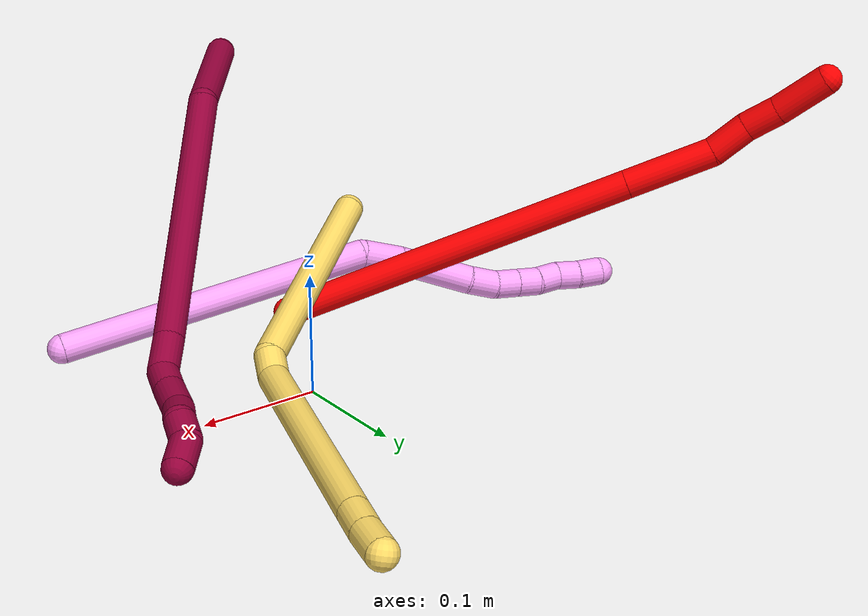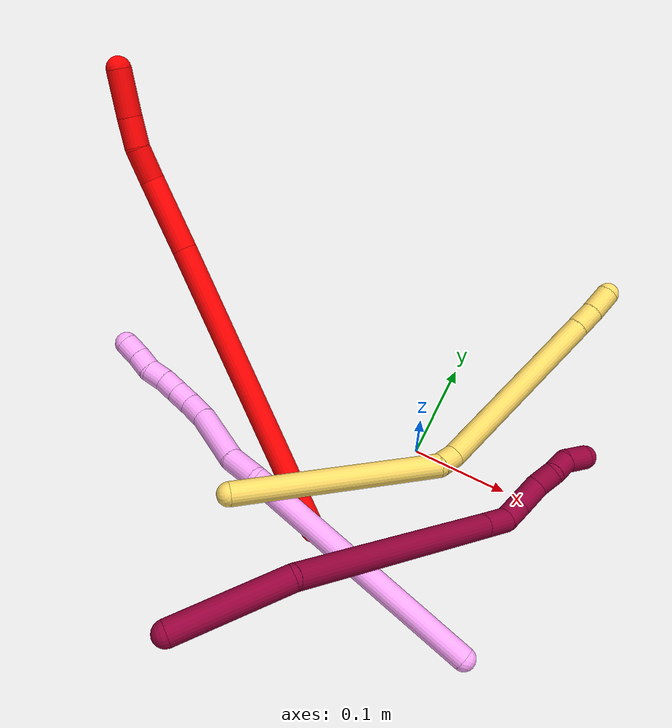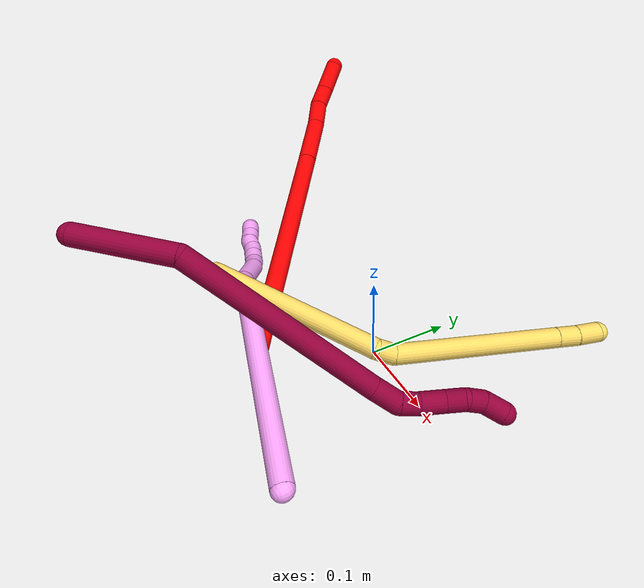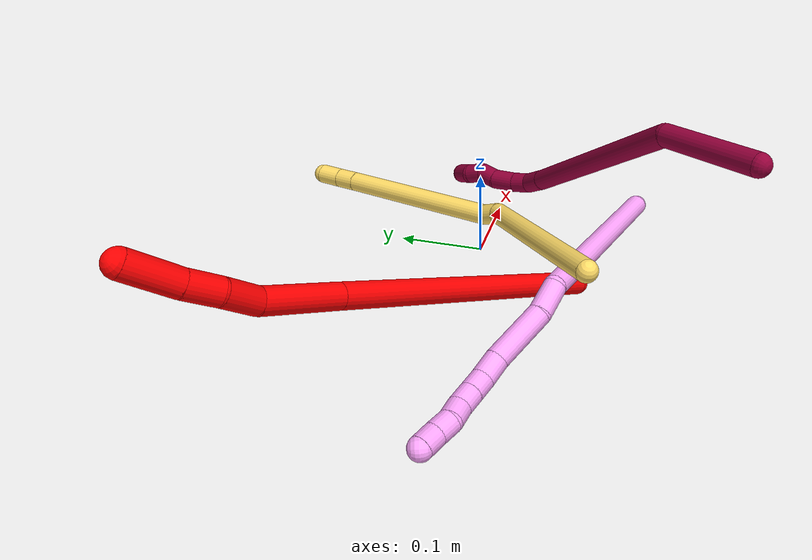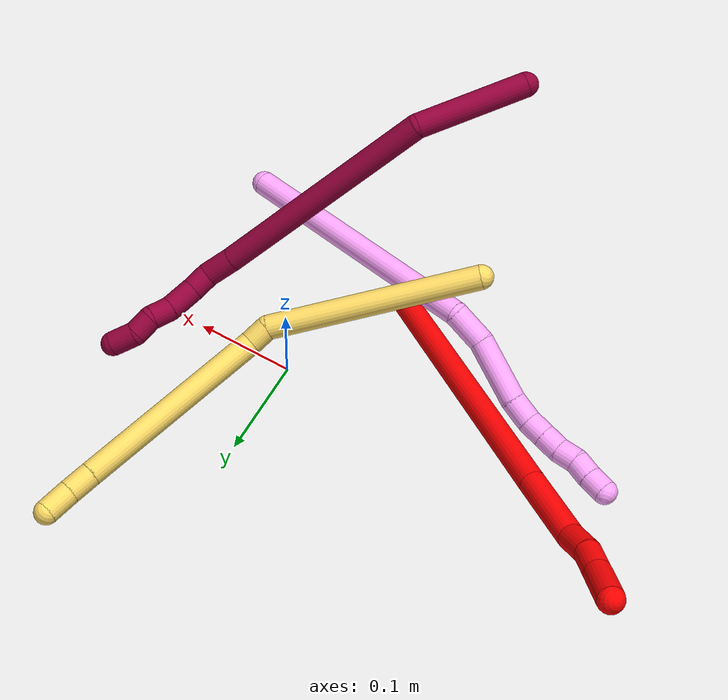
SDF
<sdf version="1.7">
 <world name="default">
  <model name="2">
   <static>0</static>
   <link name="2">
    <collision name="collision-cylinder-e_1_1_4">
     <pose>-0.061533 0.044089 0.136308 -0.31283 -0.405687 0.064848</pose>
     <geometry><cylinder><radius>0.0125</radius><length>0.311833</length></cylinder></geometry>
     <surface>
      <friction><ode><mu>1.16</mu><mu2>1.16</mu2><slip1>0</slip1><slip2>0</slip2></ode></friction>
      <contact><ode><kp>1e+06</kp><kd>1</kd><max_vel>0</max_vel><min_depth>0.001</min_depth></ode></contact>
     </surface>
    </collision>
    <visual name="visual-cylinder-e_1_1_4">
     <pose>-0.061533 0.044089 0.136308 -0.31283 -0.405687 0.064848</pose>
     <geometry><cylinder><radius>0.0125</radius><length>0.311833</length></cylinder></geometry>
     <material><ambient>1 0 0 1</ambient></material>
    </visual>
    <collision name="collision-cylinder-e_2_4_5">
     <pose>-0.138345 0.098726 0.306045 -0.305652 -0.41107 0.064201</pose>
     <geometry><cylinder><radius>0.0125</radius><length>0.076478</length></cylinder></geometry>
     <surface>
      <friction><ode><mu>1.16</mu><mu2>1.16</mu2><slip1>0</slip1><slip2>0</slip2></ode></friction>
      <contact><ode><kp>1e+06</kp><kd>1</kd><max_vel>0</max_vel><min_depth>0.001</min_depth></ode></contact>
     </surface>
    </collision>
    <visual name="visual-cylinder-e_2_4_5">
     <pose>-0.138345 0.098726 0.306045 -0.305652 -0.41107 0.064201</pose>
     <geometry><cylinder><radius>0.0125</radius><length>0.076478</length></cylinder></geometry>
     <material><ambient>1 0 0 1</ambient></material>
    </visual>
    <collision name="collision-cylinder-e_3_5_6">
     <pose>-0.15592 0.1124 0.356253 -0.184197 -0.133643 0.012361</pose>
     <geometry><cylinder><radius>0.0125</radius><length>0.034445</length></cylinder></geometry>
     <surface>
      <friction><ode><mu>1.16</mu><mu2>1.16</mu2><slip1>0</slip1><slip2>0</slip2></ode></friction>
      <contact><ode><kp>1e+06</kp><kd>1</kd><max_vel>0</max_vel><min_depth>0.001</min_depth></ode></contact>
     </surface>
    </collision>
    <visual name="visual-cylinder-e_3_5_6">
     <pose>-0.15592 0.1124 0.356253 -0.184197 -0.133643 0.012361</pose>
     <geometry><cylinder><radius>0.0125</radius><length>0.034445</length></cylinder></geometry>
     <material><ambient>1 0 0 1</ambient></material>
    </visual>
    <collision name="collision-cylinder-e_4_6_7">
     <pose>-0.160674 0.121331 0.386768 -0.399837 -0.163487 0.033197</pose>
     <geometry><cylinder><radius>0.0125</radius><length>0.030224</length></cylinder></geometry>
     <surface>
      <friction><ode><mu>1.16</mu><mu2>1.16</mu2><slip1>0</slip1><slip2>0</slip2></ode></friction>
      <contact><ode><kp>1e+06</kp><kd>1</kd><max_vel>0</max_vel><min_depth>0.001</min_depth></ode></contact>
     </surface>
    </collision>
    <visual name="visual-cylinder-e_4_6_7">
     <pose>-0.160674 0.121331 0.386768 -0.399837 -0.163487 0.033197</pose>
     <geometry><cylinder><radius>0.0125</radius><length>0.030224</length></cylinder></geometry>
     <material><ambient>1 0 0 1</ambient></material>
    </visual>
    <collision name="collision-cylinder-e_5_7_2">
     <pose>-0.164607 0.135886 0.422274 -0.382186 -0.062694 0.012132</pose>
     <geometry><cylinder><radius>0.0125</radius><length>0.04702</length></cylinder></geometry>
     <surface>
      <friction><ode><mu>1.16</mu><mu2>1.16</mu2><slip1>0</slip1><slip2>0</slip2></ode></friction>
      <contact><ode><kp>1e+06</kp><kd>1</kd><max_vel>0</max_vel><min_depth>0.001</min_depth></ode></contact>
     </surface>
    </collision>
    <visual name="visual-cylinder-e_5_7_2">
     <pose>-0.164607 0.135886 0.422274 -0.382186 -0.062694 0.012132</pose>
     <geometry><cylinder><radius>0.0125</radius><length>0.04702</length></cylinder></geometry>
     <material><ambient>1 0 0 1</ambient></material>
    </visual>
    <collision name="collision-sphere-2">
     <pose>-0.16608 0.144637 0.444045 0 -0 0</pose>
     <geometry><sphere><radius>0.0125</radius></sphere></geometry>
     <surface>
      <friction><ode><mu>1.16</mu><mu2>1.16</mu2><slip1>0</slip1><slip2>0</slip2></ode></friction>
      <contact><ode><kp>1e+06</kp><kd>1</kd><max_vel>0</max_vel><min_depth>0.001</min_depth></ode></contact>
     </surface>
    </collision>
    <visual name="visual-sphere-2">
     <pose>-0.16608 0.144637 0.444045 0 -0 0</pose>
     <geometry><sphere><radius>0.0125</radius></sphere></geometry>
     <material><ambient>1 0 0 1</ambient></material>
    </visual>
    <collision name="collision-sphere-7">
     <pose>-0.163134 0.127135 0.400503 0 -0 0</pose>
     <geometry><sphere><radius>0.0125</radius></sphere></geometry>
     <surface>
      <friction><ode><mu>1.16</mu><mu2>1.16</mu2><slip1>0</slip1><slip2>0</slip2></ode></friction>
      <contact><ode><kp>1e+06</kp><kd>1</kd><max_vel>0</max_vel><min_depth>0.001</min_depth></ode></contact>
     </surface>
    </collision>
    <visual name="visual-sphere-7">
     <pose>-0.163134 0.127135 0.400503 0 -0 0</pose>
     <geometry><sphere><radius>0.0125</radius></sphere></geometry>
     <material><ambient>1 0 0 1</ambient></material>
    </visual>
    <collision name="collision-sphere-6">
     <pose>-0.158214 0.115527 0.373033 0 -0 0</pose>
     <geometry><sphere><radius>0.0125</radius></sphere></geometry>
     <surface>
      <friction><ode><mu>1.16</mu><mu2>1.16</mu2><slip1>0</slip1><slip2>0</slip2></ode></friction>
      <contact><ode><kp>1e+06</kp><kd>1</kd><max_vel>0</max_vel><min_depth>0.001</min_depth></ode></contact>
     </surface>
    </collision>
    <visual name="visual-sphere-6">
     <pose>-0.158214 0.115527 0.373033 0 -0 0</pose>
     <geometry><sphere><radius>0.0125</radius></sphere></geometry>
     <material><ambient>1 0 0 1</ambient></material>
    </visual>
    <collision name="collision-sphere-5">
     <pose>-0.153625 0.109274 0.339473 0 -0 0</pose>
     <geometry><sphere><radius>0.0125</radius></sphere></geometry>
     <surface>
      <friction><ode><mu>1.16</mu><mu2>1.16</mu2><slip1>0</slip1><slip2>0</slip2></ode></friction>
      <contact><ode><kp>1e+06</kp><kd>1</kd><max_vel>0</max_vel><min_depth>0.001</min_depth></ode></contact>
     </surface>
    </collision>
    <visual name="visual-sphere-5">
     <pose>-0.153625 0.109274 0.339473 0 -0 0</pose>
     <geometry><sphere><radius>0.0125</radius></sphere></geometry>
     <material><ambient>1 0 0 1</ambient></material>
    </visual>
    <collision name="collision-sphere-1">
     <geometry><sphere><radius>0.0125</radius></sphere></geometry>
     <surface>
      <friction><ode><mu>1.16</mu><mu2>1.16</mu2><slip1>0</slip1><slip2>0</slip2></ode></friction>
      <contact><ode><kp>1e+06</kp><kd>1</kd><max_vel>0</max_vel><min_depth>0.001</min_depth></ode></contact>
     </surface>
    </collision>
    <visual name="visual-sphere-1">
     <geometry><sphere><radius>0.0125</radius></sphere></geometry>
     <material><ambient>1 0 0 1</ambient></material>
    </visual>
    <collision name="collision-sphere-4">
     <pose>-0.123065 0.088178 0.272616 0 -0 0</pose>
     <geometry><sphere><radius>0.0125</radius></sphere></geometry>
     <surface>
      <friction><ode><mu>1.16</mu><mu2>1.16</mu2><slip1>0</slip1><slip2>0</slip2></ode></friction>
      <contact><ode><kp>1e+06</kp><kd>1</kd><max_vel>0</max_vel><min_depth>0.001</min_depth></ode></contact>
     </surface>
    </collision>
    <visual name="visual-sphere-4">
     <pose>-0.123065 0.088178 0.272616 0 -0 0</pose>
     <geometry><sphere><radius>0.0125</radius></sphere></geometry>
     <material><ambient>1 0 0 1</ambient></material>
    </visual>
    <inertial>
     <pose>-0.09547 0.070454 0.219454 0 -0 0</pose>
     <mass>0.5</mass>
     <inertia>
      <ixx>0.002524</ixx>
      <ixy>0</ixy>
      <ixz>0</ixz>
      <iyy>0.002652</iyy>
      <iyz>0</iyz>
      <izz>0.000319</izz>
     </inertia>
    </inertial>
   </link>
   <pose>-0.057539 -0.125732 0.012359 -0.183463 -0.686213 -0.162023</pose>
  </model>
  <model name="4">
   <static>0</static>
   <link name="4">
    <collision name="collision-cylinder-e_1_1_4">
     <pose>-0.117543 -0.013818 0.064997 0.209475 -1.05626 -0.122506</pose>
     <geometry><cylinder><radius>0.0125</radius><length>0.270052</length></cylinder></geometry>
     <surface>
      <friction><ode><mu>1.16</mu><mu2>1.16</mu2><slip1>0</slip1><slip2>0</slip2></ode></friction>
      <contact><ode><kp>1e+06</kp><kd>1</kd><max_vel>0</max_vel><min_depth>0.001</min_depth></ode></contact>
     </surface>
    </collision>
    <visual name="visual-cylinder-e_1_1_4">
     <pose>-0.117543 -0.013818 0.064997 0.209475 -1.05626 -0.122506</pose>
     <geometry><cylinder><radius>0.0125</radius><length>0.270052</length></cylinder></geometry>
     <material><ambient>1 0.65098 0.996078 1</ambient></material>
    </visual>
    <collision name="collision-cylinder-e_2_4_5">
     <pose>-0.249394 -0.021034 0.139409 -0.611579 -0.893828 0.300315</pose>
     <geometry><cylinder><radius>0.0125</radius><length>0.036711</length></cylinder></geometry>
     <surface>
      <friction><ode><mu>1.16</mu><mu2>1.16</mu2><slip1>0</slip1><slip2>0</slip2></ode></friction>
      <contact><ode><kp>1e+06</kp><kd>1</kd><max_vel>0</max_vel><min_depth>0.001</min_depth></ode></contact>
     </surface>
    </collision>
    <visual name="visual-cylinder-e_2_4_5">
     <pose>-0.249394 -0.021034 0.139409 -0.611579 -0.893828 0.300315</pose>
     <geometry><cylinder><radius>0.0125</radius><length>0.036711</length></cylinder></geometry>
     <material><ambient>1 0.65098 0.996078 1</ambient></material>
    </visual>
    <collision name="collision-cylinder-e_3_5_6">
     <pose>-0.283754 -0.003081 0.171877 -0.457534 -0.662639 0.159855</pose>
     <geometry><cylinder><radius>0.0125</radius><length>0.06519</length></cylinder></geometry>
     <surface>
      <friction><ode><mu>1.16</mu><mu2>1.16</mu2><slip1>0</slip1><slip2>0</slip2></ode></friction>
      <contact><ode><kp>1e+06</kp><kd>1</kd><max_vel>0</max_vel><min_depth>0.001</min_depth></ode></contact>
     </surface>
    </collision>
    <visual name="visual-cylinder-e_3_5_6">
     <pose>-0.283754 -0.003081 0.171877 -0.457534 -0.662639 0.159855</pose>
     <geometry><cylinder><radius>0.0125</radius><length>0.06519</length></cylinder></geometry>
     <material><ambient>1 0.65098 0.996078 1</ambient></material>
    </visual>
    <collision name="collision-cylinder-e_4_6_7">
     <pose>-0.313134 0.01252 0.202619 -0.504888 -0.815385 0.221894</pose>
     <geometry><cylinder><radius>0.0125</radius><length>0.025627</length></cylinder></geometry>
     <surface>
      <friction><ode><mu>1.16</mu><mu2>1.16</mu2><slip1>0</slip1><slip2>0</slip2></ode></friction>
      <contact><ode><kp>1e+06</kp><kd>1</kd><max_vel>0</max_vel><min_depth>0.001</min_depth></ode></contact>
     </surface>
    </collision>
    <visual name="visual-cylinder-e_4_6_7">
     <pose>-0.313134 0.01252 0.202619 -0.504888 -0.815385 0.221894</pose>
     <geometry><cylinder><radius>0.0125</radius><length>0.025627</length></cylinder></geometry>
     <material><ambient>1 0.65098 0.996078 1</ambient></material>
    </visual>
    <collision name="collision-cylinder-e_5_7_8">
     <pose>-0.331106 0.017872 0.21609 -0.188429 -0.972932 0.099865</pose>
     <geometry><cylinder><radius>0.0125</radius><length>0.020915</length></cylinder></geometry>
     <surface>
      <friction><ode><mu>1.16</mu><mu2>1.16</mu2><slip1>0</slip1><slip2>0</slip2></ode></friction>
      <contact><ode><kp>1e+06</kp><kd>1</kd><max_vel>0</max_vel><min_depth>0.001</min_depth></ode></contact>
     </surface>
    </collision>
    <visual name="visual-cylinder-e_5_7_8">
     <pose>-0.331106 0.017872 0.21609 -0.188429 -0.972932 0.099865</pose>
     <geometry><cylinder><radius>0.0125</radius><length>0.020915</length></cylinder></geometry>
     <material><ambient>1 0.65098 0.996078 1</ambient></material>
    </visual>
    <collision name="collision-cylinder-e_6_8_9">
     <pose>-0.348093 0.020046 0.227468 -0.189218 -0.971684 0.100133</pose>
     <geometry><cylinder><radius>0.0125</radius><length>0.020208</length></cylinder></geometry>
     <surface>
      <friction><ode><mu>1.16</mu><mu2>1.16</mu2><slip1>0</slip1><slip2>0</slip2></ode></friction>
      <contact><ode><kp>1e+06</kp><kd>1</kd><max_vel>0</max_vel><min_depth>0.001</min_depth></ode></contact>
     </surface>
    </collision>
    <visual name="visual-cylinder-e_6_8_9">
     <pose>-0.348093 0.020046 0.227468 -0.189218 -0.971684 0.100133</pose>
     <geometry><cylinder><radius>0.0125</radius><length>0.020208</length></cylinder></geometry>
     <material><ambient>1 0.65098 0.996078 1</ambient></material>
    </visual>
    <collision name="collision-cylinder-e_7_9_10">
     <pose>-0.365698 0.021167 0.237125 -0.012321 -1.15748 0.00805</pose>
     <geometry><cylinder><radius>0.0125</radius><length>0.020223</length></cylinder></geometry>
     <surface>
      <friction><ode><mu>1.16</mu><mu2>1.16</mu2><slip1>0</slip1><slip2>0</slip2></ode></friction>
      <contact><ode><kp>1e+06</kp><kd>1</kd><max_vel>0</max_vel><min_depth>0.001</min_depth></ode></contact>
     </surface>
    </collision>
    <visual name="visual-cylinder-e_7_9_10">
     <pose>-0.365698 0.021167 0.237125 -0.012321 -1.15748 0.00805</pose>
     <geometry><cylinder><radius>0.0125</radius><length>0.020223</length></cylinder></geometry>
     <material><ambient>1 0.65098 0.996078 1</ambient></material>
    </visual>
    <collision name="collision-cylinder-e_8_10_11">
     <pose>-0.382585 0.021815 0.247991 -0.087632 -0.840372 0.039174</pose>
     <geometry><cylinder><radius>0.0125</radius><length>0.020478</length></cylinder></geometry>
     <surface>
      <friction><ode><mu>1.16</mu><mu2>1.16</mu2><slip1>0</slip1><slip2>0</slip2></ode></friction>
      <contact><ode><kp>1e+06</kp><kd>1</kd><max_vel>0</max_vel><min_depth>0.001</min_depth></ode></contact>
     </surface>
    </collision>
    <visual name="visual-cylinder-e_8_10_11">
     <pose>-0.382585 0.021815 0.247991 -0.087632 -0.840372 0.039174</pose>
     <geometry><cylinder><radius>0.0125</radius><length>0.020478</length></cylinder></geometry>
     <material><ambient>1 0.65098 0.996078 1</ambient></material>
    </visual>
    <collision name="collision-cylinder-e_9_11_2">
     <pose>-0.398524 0.022346 0.260875 0.01108 -0.939375 -0.005624</pose>
     <geometry><cylinder><radius>0.0125</radius><length>0.020597</length></cylinder></geometry>
     <surface>
      <friction><ode><mu>1.16</mu><mu2>1.16</mu2><slip1>0</slip1><slip2>0</slip2></ode></friction>
      <contact><ode><kp>1e+06</kp><kd>1</kd><max_vel>0</max_vel><min_depth>0.001</min_depth></ode></contact>
     </surface>
    </collision>
    <visual name="visual-cylinder-e_9_11_2">
     <pose>-0.398524 0.022346 0.260875 0.01108 -0.939375 -0.005624</pose>
     <geometry><cylinder><radius>0.0125</radius><length>0.020597</length></cylinder></geometry>
     <material><ambient>1 0.65098 0.996078 1</ambient></material>
    </visual>
    <collision name="collision-sphere-2">
     <pose>-0.406837 0.022279 0.266954 0 -0 0</pose>
     <geometry><sphere><radius>0.0125</radius></sphere></geometry>
     <surface>
      <friction><ode><mu>1.16</mu><mu2>1.16</mu2><slip1>0</slip1><slip2>0</slip2></ode></friction>
      <contact><ode><kp>1e+06</kp><kd>1</kd><max_vel>0</max_vel><min_depth>0.001</min_depth></ode></contact>
     </surface>
    </collision>
    <visual name="visual-sphere-2">
     <pose>-0.406837 0.022279 0.266954 0 -0 0</pose>
     <geometry><sphere><radius>0.0125</radius></sphere></geometry>
     <material><ambient>1 0.65098 0.996078 1</ambient></material>
    </visual>
    <collision name="collision-sphere-11">
     <pose>-0.390212 0.022413 0.254796 0 -0 0</pose>
     <geometry><sphere><radius>0.0125</radius></sphere></geometry>
     <surface>
      <friction><ode><mu>1.16</mu><mu2>1.16</mu2><slip1>0</slip1><slip2>0</slip2></ode></friction>
      <contact><ode><kp>1e+06</kp><kd>1</kd><max_vel>0</max_vel><min_depth>0.001</min_depth></ode></contact>
     </surface>
    </collision>
    <visual name="visual-sphere-11">
     <pose>-0.390212 0.022413 0.254796 0 -0 0</pose>
     <geometry><sphere><radius>0.0125</radius></sphere></geometry>
     <material><ambient>1 0.65098 0.996078 1</ambient></material>
    </visual>
    <collision name="collision-sphere-10">
     <pose>-0.374958 0.021218 0.241186 0 -0 0</pose>
     <geometry><sphere><radius>0.0125</radius></sphere></geometry>
     <surface>
      <friction><ode><mu>1.16</mu><mu2>1.16</mu2><slip1>0</slip1><slip2>0</slip2></ode></friction>
      <contact><ode><kp>1e+06</kp><kd>1</kd><max_vel>0</max_vel><min_depth>0.001</min_depth></ode></contact>
     </surface>
    </collision>
    <visual name="visual-sphere-10">
     <pose>-0.374958 0.021218 0.241186 0 -0 0</pose>
     <geometry><sphere><radius>0.0125</radius></sphere></geometry>
     <material><ambient>1 0.65098 0.996078 1</ambient></material>
    </visual>
    <collision name="collision-sphere-9">
     <pose>-0.356437 0.021117 0.233064 0 -0 0</pose>
     <geometry><sphere><radius>0.0125</radius></sphere></geometry>
     <surface>
      <friction><ode><mu>1.16</mu><mu2>1.16</mu2><slip1>0</slip1><slip2>0</slip2></ode></friction>
      <contact><ode><kp>1e+06</kp><kd>1</kd><max_vel>0</max_vel><min_depth>0.001</min_depth></ode></contact>
     </surface>
    </collision>
    <visual name="visual-sphere-9">
     <pose>-0.356437 0.021117 0.233064 0 -0 0</pose>
     <geometry><sphere><radius>0.0125</radius></sphere></geometry>
     <material><ambient>1 0.65098 0.996078 1</ambient></material>
    </visual>
    <collision name="collision-sphere-4">
     <pose>-0.235086 -0.027636 0.129995 0 -0 0</pose>
     <geometry><sphere><radius>0.0125</radius></sphere></geometry>
     <surface>
      <friction><ode><mu>1.16</mu><mu2>1.16</mu2><slip1>0</slip1><slip2>0</slip2></ode></friction>
      <contact><ode><kp>1e+06</kp><kd>1</kd><max_vel>0</max_vel><min_depth>0.001</min_depth></ode></contact>
     </surface>
    </collision>
    <visual name="visual-sphere-4">
     <pose>-0.235086 -0.027636 0.129995 0 -0 0</pose>
     <geometry><sphere><radius>0.0125</radius></sphere></geometry>
     <material><ambient>1 0.65098 0.996078 1</ambient></material>
    </visual>
    <collision name="collision-sphere-1">
     <geometry><sphere><radius>0.0125</radius></sphere></geometry>
     <surface>
      <friction><ode><mu>1.16</mu><mu2>1.16</mu2><slip1>0</slip1><slip2>0</slip2></ode></friction>
      <contact><ode><kp>1e+06</kp><kd>1</kd><max_vel>0</max_vel><min_depth>0.001</min_depth></ode></contact>
     </surface>
    </collision>
    <visual name="visual-sphere-1">
     <geometry><sphere><radius>0.0125</radius></sphere></geometry>
     <material><ambient>1 0.65098 0.996078 1</ambient></material>
    </visual>
    <collision name="collision-sphere-8">
     <pose>-0.339749 0.018974 0.221872 0 -0 0</pose>
     <geometry><sphere><radius>0.0125</radius></sphere></geometry>
     <surface>
      <friction><ode><mu>1.16</mu><mu2>1.16</mu2><slip1>0</slip1><slip2>0</slip2></ode></friction>
      <contact><ode><kp>1e+06</kp><kd>1</kd><max_vel>0</max_vel><min_depth>0.001</min_depth></ode></contact>
     </surface>
    </collision>
    <visual name="visual-sphere-8">
     <pose>-0.339749 0.018974 0.221872 0 -0 0</pose>
     <geometry><sphere><radius>0.0125</radius></sphere></geometry>
     <material><ambient>1 0.65098 0.996078 1</ambient></material>
    </visual>
    <collision name="collision-sphere-5">
     <pose>-0.263701 -0.014432 0.148823 0 -0 0</pose>
     <geometry><sphere><radius>0.0125</radius></sphere></geometry>
     <surface>
      <friction><ode><mu>1.16</mu><mu2>1.16</mu2><slip1>0</slip1><slip2>0</slip2></ode></friction>
      <contact><ode><kp>1e+06</kp><kd>1</kd><max_vel>0</max_vel><min_depth>0.001</min_depth></ode></contact>
     </surface>
    </collision>
    <visual name="visual-sphere-5">
     <pose>-0.263701 -0.014432 0.148823 0 -0 0</pose>
     <geometry><sphere><radius>0.0125</radius></sphere></geometry>
     <material><ambient>1 0.65098 0.996078 1</ambient></material>
    </visual>
    <collision name="collision-sphere-6">
     <pose>-0.303806 0.00827 0.194931 0 -0 0</pose>
     <geometry><sphere><radius>0.0125</radius></sphere></geometry>
     <surface>
      <friction><ode><mu>1.16</mu><mu2>1.16</mu2><slip1>0</slip1><slip2>0</slip2></ode></friction>
      <contact><ode><kp>1e+06</kp><kd>1</kd><max_vel>0</max_vel><min_depth>0.001</min_depth></ode></contact>
     </surface>
    </collision>
    <visual name="visual-sphere-6">
     <pose>-0.303806 0.00827 0.194931 0 -0 0</pose>
     <geometry><sphere><radius>0.0125</radius></sphere></geometry>
     <material><ambient>1 0.65098 0.996078 1</ambient></material>
    </visual>
    <collision name="collision-sphere-7">
     <pose>-0.322462 0.016769 0.210308 0 -0 0</pose>
     <geometry><sphere><radius>0.0125</radius></sphere></geometry>
     <surface>
      <friction><ode><mu>1.16</mu><mu2>1.16</mu2><slip1>0</slip1><slip2>0</slip2></ode></friction>
      <contact><ode><kp>1e+06</kp><kd>1</kd><max_vel>0</max_vel><min_depth>0.001</min_depth></ode></contact>
     </surface>
    </collision>
    <visual name="visual-sphere-7">
     <pose>-0.322462 0.016769 0.210308 0 -0 0</pose>
     <geometry><sphere><radius>0.0125</radius></sphere></geometry>
     <material><ambient>1 0.65098 0.996078 1</ambient></material>
    </visual>
    <inertial>
     <pose>-0.209637 -0.00454 0.126862 0 -0 0</pose>
     <mass>0.5</mass>
     <inertia>
      <ixx>0.00071</ixx>
      <ixy>0</ixy>
      <ixz>0</ixz>
      <iyy>0.001586</iyy>
      <iyz>0</iyz>
      <izz>0.001644</izz>
     </inertia>
    </inertial>
   </link>
   <pose>0.132639 -0.174076 0.011577 -1.63614 0.101618 0.279705</pose>
  </model>
  <model name="5">
   <static>0</static>
   <link name="5">
    <collision name="collision-cylinder-e_1_1_4">
     <pose>0.066175 0.056163 -0.064604 -2.42598 0.658089 -1.48015</pose>
     <geometry><cylinder><radius>0.0125</radius><length>0.216398</length></cylinder></geometry>
     <surface>
      <friction><ode><mu>1.16</mu><mu2>1.16</mu2><slip1>0</slip1><slip2>0</slip2></ode></friction>
      <contact><ode><kp>1e+06</kp><kd>1</kd><max_vel>0</max_vel><min_depth>0.001</min_depth></ode></contact>
     </surface>
    </collision>
    <visual name="visual-cylinder-e_1_1_4">
     <pose>0.066175 0.056163 -0.064604 -2.42598 0.658089 -1.48015</pose>
     <geometry><cylinder><radius>0.0125</radius><length>0.216398</length></cylinder></geometry>
     <material><ambient>1 0.858824 0.4 1</ambient></material>
    </visual>
    <collision name="collision-cylinder-e_2_4_5">
     <pose>0.134113 0.120362 -0.137154 -2.35058 0.154725 -0.367152</pose>
     <geometry><cylinder><radius>0.0125</radius><length>0.022878</length></cylinder></geometry>
     <surface>
      <friction><ode><mu>1.16</mu><mu2>1.16</mu2><slip1>0</slip1><slip2>0</slip2></ode></friction>
      <contact><ode><kp>1e+06</kp><kd>1</kd><max_vel>0</max_vel><min_depth>0.001</min_depth></ode></contact>
     </surface>
    </collision>
    <visual name="visual-cylinder-e_2_4_5">
     <pose>0.134113 0.120362 -0.137154 -2.35058 0.154725 -0.367152</pose>
     <geometry><cylinder><radius>0.0125</radius><length>0.022878</length></cylinder></geometry>
     <material><ambient>1 0.858824 0.4 1</ambient></material>
    </visual>
    <collision name="collision-cylinder-e_3_5_6">
     <pose>0.156395 0.222012 -0.18143 -1.94098 0.201563 -0.293309</pose>
     <geometry><cylinder><radius>0.0125</radius><length>0.204982</length></cylinder></geometry>
     <surface>
      <friction><ode><mu>1.16</mu><mu2>1.16</mu2><slip1>0</slip1><slip2>0</slip2></ode></friction>
      <contact><ode><kp>1e+06</kp><kd>1</kd><max_vel>0</max_vel><min_depth>0.001</min_depth></ode></contact>
     </surface>
    </collision>
    <visual name="visual-cylinder-e_3_5_6">
     <pose>0.156395 0.222012 -0.18143 -1.94098 0.201563 -0.293309</pose>
     <geometry><cylinder><radius>0.0125</radius><length>0.204982</length></cylinder></geometry>
     <material><ambient>1 0.858824 0.4 1</ambient></material>
    </visual>
    <collision name="collision-cylinder-e_4_6_7">
     <pose>0.179468 0.327752 -0.222567 -1.94829 0.193413 -0.283725</pose>
     <geometry><cylinder><radius>0.0125</radius><length>0.026584</length></cylinder></geometry>
     <surface>
      <friction><ode><mu>1.16</mu><mu2>1.16</mu2><slip1>0</slip1><slip2>0</slip2></ode></friction>
      <contact><ode><kp>1e+06</kp><kd>1</kd><max_vel>0</max_vel><min_depth>0.001</min_depth></ode></contact>
     </surface>
    </collision>
    <visual name="visual-cylinder-e_4_6_7">
     <pose>0.179468 0.327752 -0.222567 -1.94829 0.193413 -0.283725</pose>
     <geometry><cylinder><radius>0.0125</radius><length>0.026584</length></cylinder></geometry>
     <material><ambient>1 0.858824 0.4 1</ambient></material>
    </visual>
    <collision name="collision-cylinder-e_5_7_2">
     <pose>0.184397 0.353523 -0.231928 -1.89283 0.163528 -0.226483</pose>
     <geometry><cylinder><radius>0.0125</radius><length>0.029158</length></cylinder></geometry>
     <surface>
      <friction><ode><mu>1.16</mu><mu2>1.16</mu2><slip1>0</slip1><slip2>0</slip2></ode></friction>
      <contact><ode><kp>1e+06</kp><kd>1</kd><max_vel>0</max_vel><min_depth>0.001</min_depth></ode></contact>
     </surface>
    </collision>
    <visual name="visual-cylinder-e_5_7_2">
     <pose>0.184397 0.353523 -0.231928 -1.89283 0.163528 -0.226483</pose>
     <geometry><cylinder><radius>0.0125</radius><length>0.029158</length></cylinder></geometry>
     <material><ambient>1 0.858824 0.4 1</ambient></material>
    </visual>
    <collision name="collision-sphere-2">
     <pose>0.18677 0.367168 -0.23648 0 -0 0</pose>
     <geometry><sphere><radius>0.0125</radius></sphere></geometry>
     <surface>
      <friction><ode><mu>1.16</mu><mu2>1.16</mu2><slip1>0</slip1><slip2>0</slip2></ode></friction>
      <contact><ode><kp>1e+06</kp><kd>1</kd><max_vel>0</max_vel><min_depth>0.001</min_depth></ode></contact>
     </surface>
    </collision>
    <visual name="visual-sphere-2">
     <pose>0.18677 0.367168 -0.23648 0 -0 0</pose>
     <geometry><sphere><radius>0.0125</radius></sphere></geometry>
     <material><ambient>1 0.858824 0.4 1</ambient></material>
    </visual>
    <collision name="collision-sphere-7">
     <pose>0.182023 0.339878 -0.227375 0 -0 0</pose>
     <geometry><sphere><radius>0.0125</radius></sphere></geometry>
     <surface>
      <friction><ode><mu>1.16</mu><mu2>1.16</mu2><slip1>0</slip1><slip2>0</slip2></ode></friction>
      <contact><ode><kp>1e+06</kp><kd>1</kd><max_vel>0</max_vel><min_depth>0.001</min_depth></ode></contact>
     </surface>
    </collision>
    <visual name="visual-sphere-7">
     <pose>0.182023 0.339878 -0.227375 0 -0 0</pose>
     <geometry><sphere><radius>0.0125</radius></sphere></geometry>
     <material><ambient>1 0.858824 0.4 1</ambient></material>
    </visual>
    <collision name="collision-sphere-6">
     <pose>0.176914 0.315626 -0.217759 0 -0 0</pose>
     <geometry><sphere><radius>0.0125</radius></sphere></geometry>
     <surface>
      <friction><ode><mu>1.16</mu><mu2>1.16</mu2><slip1>0</slip1><slip2>0</slip2></ode></friction>
      <contact><ode><kp>1e+06</kp><kd>1</kd><max_vel>0</max_vel><min_depth>0.001</min_depth></ode></contact>
     </surface>
    </collision>
    <visual name="visual-sphere-6">
     <pose>0.176914 0.315626 -0.217759 0 -0 0</pose>
     <geometry><sphere><radius>0.0125</radius></sphere></geometry>
     <material><ambient>1 0.858824 0.4 1</ambient></material>
    </visual>
    <collision name="collision-sphere-5">
     <pose>0.135876 0.128398 -0.145101 0 -0 0</pose>
     <geometry><sphere><radius>0.0125</radius></sphere></geometry>
     <surface>
      <friction><ode><mu>1.16</mu><mu2>1.16</mu2><slip1>0</slip1><slip2>0</slip2></ode></friction>
      <contact><ode><kp>1e+06</kp><kd>1</kd><max_vel>0</max_vel><min_depth>0.001</min_depth></ode></contact>
     </surface>
    </collision>
    <visual name="visual-sphere-5">
     <pose>0.135876 0.128398 -0.145101 0 -0 0</pose>
     <geometry><sphere><radius>0.0125</radius></sphere></geometry>
     <material><ambient>1 0.858824 0.4 1</ambient></material>
    </visual>
    <collision name="collision-sphere-1">
     <geometry><sphere><radius>0.0125</radius></sphere></geometry>
     <surface>
      <friction><ode><mu>1.16</mu><mu2>1.16</mu2><slip1>0</slip1><slip2>0</slip2></ode></friction>
      <contact><ode><kp>1e+06</kp><kd>1</kd><max_vel>0</max_vel><min_depth>0.001</min_depth></ode></contact>
     </surface>
    </collision>
    <visual name="visual-sphere-1">
     <geometry><sphere><radius>0.0125</radius></sphere></geometry>
     <material><ambient>1 0.858824 0.4 1</ambient></material>
    </visual>
    <collision name="collision-sphere-4">
     <pose>0.13235 0.112325 -0.129207 0 -0 0</pose>
     <geometry><sphere><radius>0.0125</radius></sphere></geometry>
     <surface>
      <friction><ode><mu>1.16</mu><mu2>1.16</mu2><slip1>0</slip1><slip2>0</slip2></ode></friction>
      <contact><ode><kp>1e+06</kp><kd>1</kd><max_vel>0</max_vel><min_depth>0.001</min_depth></ode></contact>
     </surface>
    </collision>
    <visual name="visual-sphere-4">
     <pose>0.13235 0.112325 -0.129207 0 -0 0</pose>
     <geometry><sphere><radius>0.0125</radius></sphere></geometry>
     <material><ambient>1 0.858824 0.4 1</ambient></material>
    </visual>
    <inertial>
     <pose>0.119188 0.158873 -0.133974 0 -0 0</pose>
     <mass>0.5</mass>
     <inertia>
      <ixx>-0.000116</ixx>
      <ixy>0</ixy>
      <ixz>0</ixz>
      <iyy>-0.000783</iyy>
      <iyz>0</iyz>
      <izz>-0.001799</izz>
     </inertia>
    </inertial>
   </link>
   <pose>-0.135271 -0.143524 0.084933 0.237107 -0.338863 -0.06176</pose>
  </model>
  <model name="8">
   <static>0</static>
   <link name="8">
    <collision name="collision-cylinder-e_1_1_4">
     <pose>0.002922 0.000674 -0.056444 -3.12965 0.051716 -2.68773</pose>
     <geometry><cylinder><radius>0.0125</radius><length>0.113047</length></cylinder></geometry>
     <surface>
      <friction><ode><mu>1.16</mu><mu2>1.16</mu2><slip1>0</slip1><slip2>0</slip2></ode></friction>
      <contact><ode><kp>1e+06</kp><kd>1</kd><max_vel>0</max_vel><min_depth>0.001</min_depth></ode></contact>
     </surface>
    </collision>
    <visual name="visual-cylinder-e_1_1_4">
     <pose>0.002922 0.000674 -0.056444 -3.12965 0.051716 -2.68773</pose>
     <geometry><cylinder><radius>0.0125</radius><length>0.113047</length></cylinder></geometry>
     <material><ambient>0.584314 0 0.227451 1</ambient></material>
    </visual>
    <collision name="collision-cylinder-e_2_4_5">
     <pose>0.008992 0.059596 -0.214756 -2.62217 0.026827 -0.100882</pose>
     <geometry><cylinder><radius>0.0125</radius><length>0.234776</length></cylinder></geometry>
     <surface>
      <friction><ode><mu>1.16</mu><mu2>1.16</mu2><slip1>0</slip1><slip2>0</slip2></ode></friction>
      <contact><ode><kp>1e+06</kp><kd>1</kd><max_vel>0</max_vel><min_depth>0.001</min_depth></ode></contact>
     </surface>
    </collision>
    <visual name="visual-cylinder-e_2_4_5">
     <pose>0.008992 0.059596 -0.214756 -2.62217 0.026827 -0.100882</pose>
     <geometry><cylinder><radius>0.0125</radius><length>0.234776</length></cylinder></geometry>
     <material><ambient>0.584314 0 0.227451 1</ambient></material>
    </visual>
    <collision name="collision-cylinder-e_3_5_6">
     <pose>0.012373 0.124667 -0.330588 -2.68702 0.014887 -0.064346</pose>
     <geometry><cylinder><radius>0.0125</radius><length>0.031085</length></cylinder></geometry>
     <surface>
      <friction><ode><mu>1.16</mu><mu2>1.16</mu2><slip1>0</slip1><slip2>0</slip2></ode></friction>
      <contact><ode><kp>1e+06</kp><kd>1</kd><max_vel>0</max_vel><min_depth>0.001</min_depth></ode></contact>
     </surface>
    </collision>
    <visual name="visual-cylinder-e_3_5_6">
     <pose>0.012373 0.124667 -0.330588 -2.68702 0.014887 -0.064346</pose>
     <geometry><cylinder><radius>0.0125</radius><length>0.031085</length></cylinder></geometry>
     <material><ambient>0.584314 0 0.227451 1</ambient></material>
    </visual>
    <collision name="collision-cylinder-e_4_6_7">
     <pose>0.017081 0.133121 -0.354391 -2.97747 0.421894 -2.40816</pose>
     <geometry><cylinder><radius>0.0125</radius><length>0.021868</length></cylinder></geometry>
     <surface>
      <friction><ode><mu>1.16</mu><mu2>1.16</mu2><slip1>0</slip1><slip2>0</slip2></ode></friction>
      <contact><ode><kp>1e+06</kp><kd>1</kd><max_vel>0</max_vel><min_depth>0.001</min_depth></ode></contact>
     </surface>
    </collision>
    <visual name="visual-cylinder-e_4_6_7">
     <pose>0.017081 0.133121 -0.354391 -2.97747 0.421894 -2.40816</pose>
     <geometry><cylinder><radius>0.0125</radius><length>0.021868</length></cylinder></geometry>
     <material><ambient>0.584314 0 0.227451 1</ambient></material>
    </visual>
    <collision name="collision-cylinder-e_5_7_8">
     <pose>0.027931 0.134835 -0.377859 -3.13542 0.437459 -3.11384</pose>
     <geometry><cylinder><radius>0.0125</radius><length>0.030086</length></cylinder></geometry>
     <surface>
      <friction><ode><mu>1.16</mu><mu2>1.16</mu2><slip1>0</slip1><slip2>0</slip2></ode></friction>
      <contact><ode><kp>1e+06</kp><kd>1</kd><max_vel>0</max_vel><min_depth>0.001</min_depth></ode></contact>
     </surface>
    </collision>
    <visual name="visual-cylinder-e_5_7_8">
     <pose>0.027931 0.134835 -0.377859 -3.13542 0.437459 -3.11384</pose>
     <geometry><cylinder><radius>0.0125</radius><length>0.030086</length></cylinder></geometry>
     <material><ambient>0.584314 0 0.227451 1</ambient></material>
    </visual>
    <collision name="collision-cylinder-e_6_8_9">
     <pose>0.037045 0.132841 -0.401997 2.9465 0.250387 1.8198</pose>
     <geometry><cylinder><radius>0.0125</radius><length>0.022121</length></cylinder></geometry>
     <surface>
      <friction><ode><mu>1.16</mu><mu2>1.16</mu2><slip1>0</slip1><slip2>0</slip2></ode></friction>
      <contact><ode><kp>1e+06</kp><kd>1</kd><max_vel>0</max_vel><min_depth>0.001</min_depth></ode></contact>
     </surface>
    </collision>
    <visual name="visual-cylinder-e_6_8_9">
     <pose>0.037045 0.132841 -0.401997 2.9465 0.250387 1.8198</pose>
     <geometry><cylinder><radius>0.0125</radius><length>0.022121</length></cylinder></geometry>
     <material><ambient>0.584314 0 0.227451 1</ambient></material>
    </visual>
    <collision name="collision-cylinder-e_7_9_10">
     <pose>0.043956 0.133396 -0.421819 -2.86603 0.40707 -1.95846</pose>
     <geometry><cylinder><radius>0.0125</radius><length>0.021071</length></cylinder></geometry>
     <surface>
      <friction><ode><mu>1.16</mu><mu2>1.16</mu2><slip1>0</slip1><slip2>0</slip2></ode></friction>
      <contact><ode><kp>1e+06</kp><kd>1</kd><max_vel>0</max_vel><min_depth>0.001</min_depth></ode></contact>
     </surface>
    </collision>
    <visual name="visual-cylinder-e_7_9_10">
     <pose>0.043956 0.133396 -0.421819 -2.86603 0.40707 -1.95846</pose>
     <geometry><cylinder><radius>0.0125</radius><length>0.021071</length></cylinder></geometry>
     <material><ambient>0.584314 0 0.227451 1</ambient></material>
    </visual>
    <collision name="collision-cylinder-e_8_10_2">
     <pose>0.047347 0.140051 -0.443438 -2.82575 -0.060212 0.373806</pose>
     <geometry><cylinder><radius>0.0125</radius><length>0.025947</length></cylinder></geometry>
     <surface>
      <friction><ode><mu>1.16</mu><mu2>1.16</mu2><slip1>0</slip1><slip2>0</slip2></ode></friction>
      <contact><ode><kp>1e+06</kp><kd>1</kd><max_vel>0</max_vel><min_depth>0.001</min_depth></ode></contact>
     </surface>
    </collision>
    <visual name="visual-cylinder-e_8_10_2">
     <pose>0.047347 0.140051 -0.443438 -2.82575 -0.060212 0.373806</pose>
     <geometry><cylinder><radius>0.0125</radius><length>0.025947</length></cylinder></geometry>
     <material><ambient>0.584314 0 0.227451 1</ambient></material>
    </visual>
    <collision name="collision-sphere-2">
     <pose>0.046566 0.144074 -0.455747 0 -0 0</pose>
     <geometry><sphere><radius>0.0125</radius></sphere></geometry>
     <surface>
      <friction><ode><mu>1.16</mu><mu2>1.16</mu2><slip1>0</slip1><slip2>0</slip2></ode></friction>
      <contact><ode><kp>1e+06</kp><kd>1</kd><max_vel>0</max_vel><min_depth>0.001</min_depth></ode></contact>
     </surface>
    </collision>
    <visual name="visual-sphere-2">
     <pose>0.046566 0.144074 -0.455747 0 -0 0</pose>
     <geometry><sphere><radius>0.0125</radius></sphere></geometry>
     <material><ambient>0.584314 0 0.227451 1</ambient></material>
    </visual>
    <collision name="collision-sphere-10">
     <pose>0.048128 0.136029 -0.431128 0 -0 0</pose>
     <geometry><sphere><radius>0.0125</radius></sphere></geometry>
     <surface>
      <friction><ode><mu>1.16</mu><mu2>1.16</mu2><slip1>0</slip1><slip2>0</slip2></ode></friction>
      <contact><ode><kp>1e+06</kp><kd>1</kd><max_vel>0</max_vel><min_depth>0.001</min_depth></ode></contact>
     </surface>
    </collision>
    <visual name="visual-sphere-10">
     <pose>0.048128 0.136029 -0.431128 0 -0 0</pose>
     <geometry><sphere><radius>0.0125</radius></sphere></geometry>
     <material><ambient>0.584314 0 0.227451 1</ambient></material>
    </visual>
    <collision name="collision-sphere-9">
     <pose>0.039785 0.130764 -0.412509 0 -0 0</pose>
     <geometry><sphere><radius>0.0125</radius></sphere></geometry>
     <surface>
      <friction><ode><mu>1.16</mu><mu2>1.16</mu2><slip1>0</slip1><slip2>0</slip2></ode></friction>
      <contact><ode><kp>1e+06</kp><kd>1</kd><max_vel>0</max_vel><min_depth>0.001</min_depth></ode></contact>
     </surface>
    </collision>
    <visual name="visual-sphere-9">
     <pose>0.039785 0.130764 -0.412509 0 -0 0</pose>
     <geometry><sphere><radius>0.0125</radius></sphere></geometry>
     <material><ambient>0.584314 0 0.227451 1</ambient></material>
    </visual>
    <collision name="collision-sphere-4">
     <pose>0.005844 0.001348 -0.112887 0 -0 0</pose>
     <geometry><sphere><radius>0.0125</radius></sphere></geometry>
     <surface>
      <friction><ode><mu>1.16</mu><mu2>1.16</mu2><slip1>0</slip1><slip2>0</slip2></ode></friction>
      <contact><ode><kp>1e+06</kp><kd>1</kd><max_vel>0</max_vel><min_depth>0.001</min_depth></ode></contact>
     </surface>
    </collision>
    <visual name="visual-sphere-4">
     <pose>0.005844 0.001348 -0.112887 0 -0 0</pose>
     <geometry><sphere><radius>0.0125</radius></sphere></geometry>
     <material><ambient>0.584314 0 0.227451 1</ambient></material>
    </visual>
    <collision name="collision-sphere-1">
     <geometry><sphere><radius>0.0125</radius></sphere></geometry>
     <surface>
      <friction><ode><mu>1.16</mu><mu2>1.16</mu2><slip1>0</slip1><slip2>0</slip2></ode></friction>
      <contact><ode><kp>1e+06</kp><kd>1</kd><max_vel>0</max_vel><min_depth>0.001</min_depth></ode></contact>
     </surface>
    </collision>
    <visual name="visual-sphere-1">
     <geometry><sphere><radius>0.0125</radius></sphere></geometry>
     <material><ambient>0.584314 0 0.227451 1</ambient></material>
    </visual>
    <collision name="collision-sphere-8">
     <pose>0.034304 0.134919 -0.391485 0 -0 0</pose>
     <geometry><sphere><radius>0.0125</radius></sphere></geometry>
     <surface>
      <friction><ode><mu>1.16</mu><mu2>1.16</mu2><slip1>0</slip1><slip2>0</slip2></ode></friction>
      <contact><ode><kp>1e+06</kp><kd>1</kd><max_vel>0</max_vel><min_depth>0.001</min_depth></ode></contact>
     </surface>
    </collision>
    <visual name="visual-sphere-8">
     <pose>0.034304 0.134919 -0.391485 0 -0 0</pose>
     <geometry><sphere><radius>0.0125</radius></sphere></geometry>
     <material><ambient>0.584314 0 0.227451 1</ambient></material>
    </visual>
    <collision name="collision-sphere-5">
     <pose>0.012141 0.117843 -0.316625 0 -0 0</pose>
     <geometry><sphere><radius>0.0125</radius></sphere></geometry>
     <surface>
      <friction><ode><mu>1.16</mu><mu2>1.16</mu2><slip1>0</slip1><slip2>0</slip2></ode></friction>
      <contact><ode><kp>1e+06</kp><kd>1</kd><max_vel>0</max_vel><min_depth>0.001</min_depth></ode></contact>
     </surface>
    </collision>
    <visual name="visual-sphere-5">
     <pose>0.012141 0.117843 -0.316625 0 -0 0</pose>
     <geometry><sphere><radius>0.0125</radius></sphere></geometry>
     <material><ambient>0.584314 0 0.227451 1</ambient></material>
    </visual>
    <collision name="collision-sphere-6">
     <pose>0.012604 0.131491 -0.34455 0 -0 0</pose>
     <geometry><sphere><radius>0.0125</radius></sphere></geometry>
     <surface>
      <friction><ode><mu>1.16</mu><mu2>1.16</mu2><slip1>0</slip1><slip2>0</slip2></ode></friction>
      <contact><ode><kp>1e+06</kp><kd>1</kd><max_vel>0</max_vel><min_depth>0.001</min_depth></ode></contact>
     </surface>
    </collision>
    <visual name="visual-sphere-6">
     <pose>0.012604 0.131491 -0.34455 0 -0 0</pose>
     <geometry><sphere><radius>0.0125</radius></sphere></geometry>
     <material><ambient>0.584314 0 0.227451 1</ambient></material>
    </visual>
    <collision name="collision-sphere-7">
     <pose>0.021559 0.13475 -0.364233 0 -0 0</pose>
     <geometry><sphere><radius>0.0125</radius></sphere></geometry>
     <surface>
      <friction><ode><mu>1.16</mu><mu2>1.16</mu2><slip1>0</slip1><slip2>0</slip2></ode></friction>
      <contact><ode><kp>1e+06</kp><kd>1</kd><max_vel>0</max_vel><min_depth>0.001</min_depth></ode></contact>
     </surface>
    </collision>
    <visual name="visual-sphere-7">
     <pose>0.021559 0.13475 -0.364233 0 -0 0</pose>
     <geometry><sphere><radius>0.0125</radius></sphere></geometry>
     <material><ambient>0.584314 0 0.227451 1</ambient></material>
    </visual>
    <inertial>
     <pose>0.014028 0.068588 -0.230962 0 -0 0</pose>
     <mass>0.5</mass>
     <inertia>
      <ixx>0.00081</ixx>
      <ixy>0</ixy>
      <ixz>0</ixz>
      <iyy>-0.000978</iyy>
      <iyz>0</iyz>
      <izz>-0.000618</izz>
     </inertia>
    </inertial>
   </link>
   <pose>-0.097322 -0.28875 0.202373 -1.46781 0.015844 2.4151</pose>
  </model>
 </world>
</sdf>
